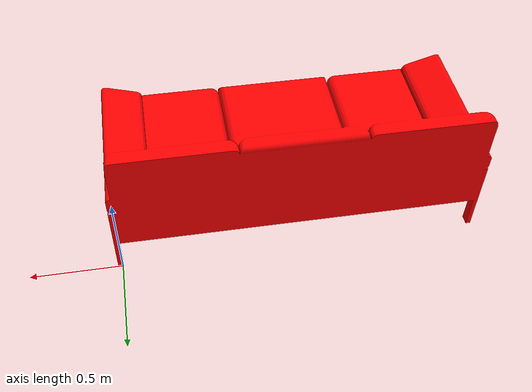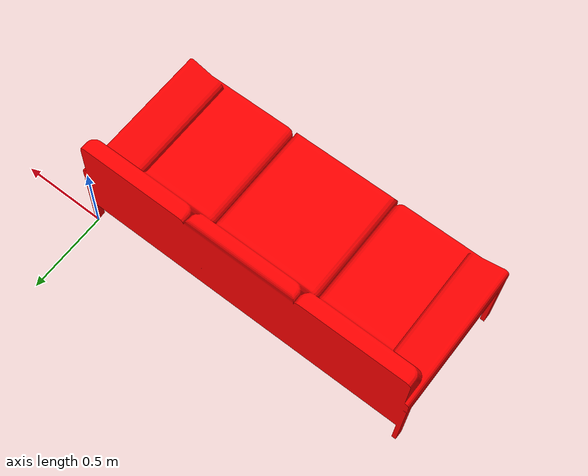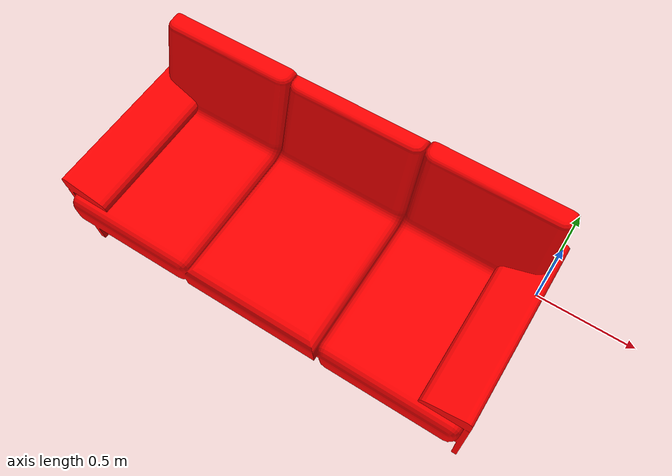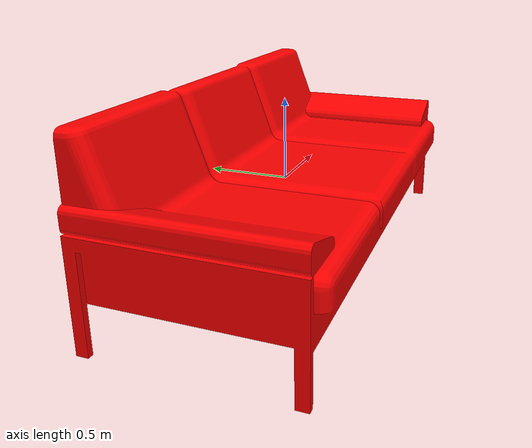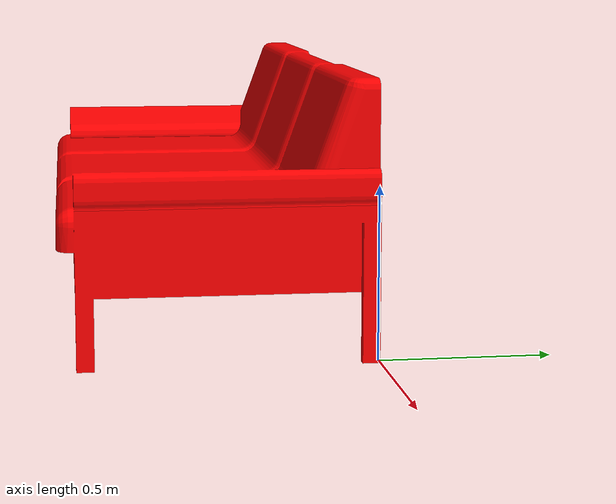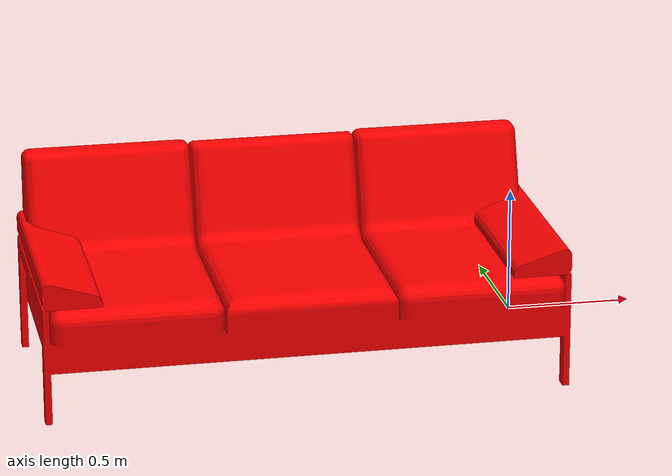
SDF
<?xml version='1.0'?>
<sdf version='1.6'>
  <model name='rai_sofa'>
    <link name='link_0'>
      <pose frame=''>0 0 0 0 -0 0</pose>

      <visual name='visual'>
        <pose frame=''>0 0 0 1.57 -0 0</pose>
        <geometry>
          <mesh>
	    <uri>model://rai_sofa/meshes/rai_sofa.STL</uri>
          </mesh>
        </geometry>
        <material>
          <lighting>1</lighting>
          <script>
            <uri>file://media/materials/scripts/gazebo.material</uri>
            <name>Gazebo/Grey</name>
          </script>
          <ambient>1 0 0 1</ambient>
          <diffuse>0.7 0.7 0.7 1</diffuse>
          <specular>0.01 0.01 0.01 1</specular>
          <emissive>0 0 0 1</emissive>
          <shader type='vertex'>
            <normal_map>__default__</normal_map>
          </shader>
        </material>
        <cast_shadows>1</cast_shadows>
        <transparency>0</transparency>
      </visual>
      <collision name='collision'>

        <pose frame=''>-0.97 -0.45 0.4 0 -0 0</pose>
        <geometry>
          <box>
            <size>2 0.9 0.8</size>
          </box>
        </geometry>

      </collision>
    </link>
    <static>1</static>
    <allow_auto_disable>1</allow_auto_disable>
  </model>
</sdf>
